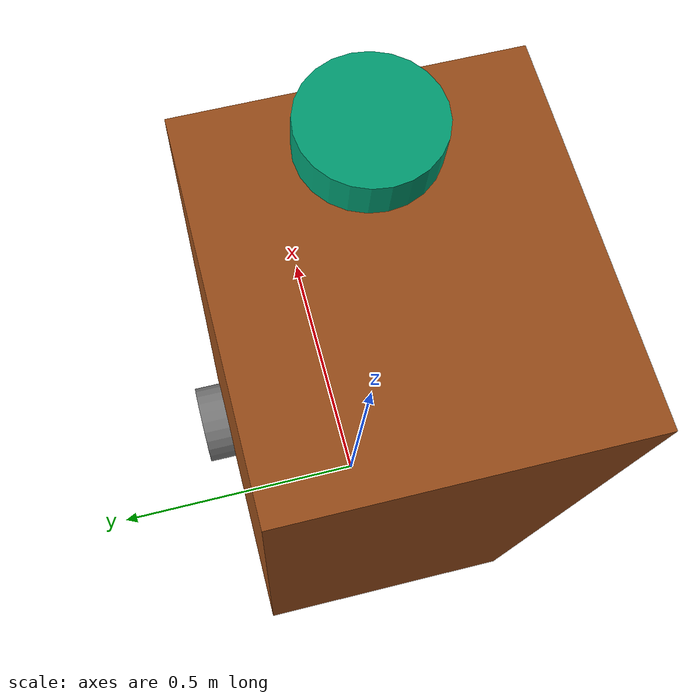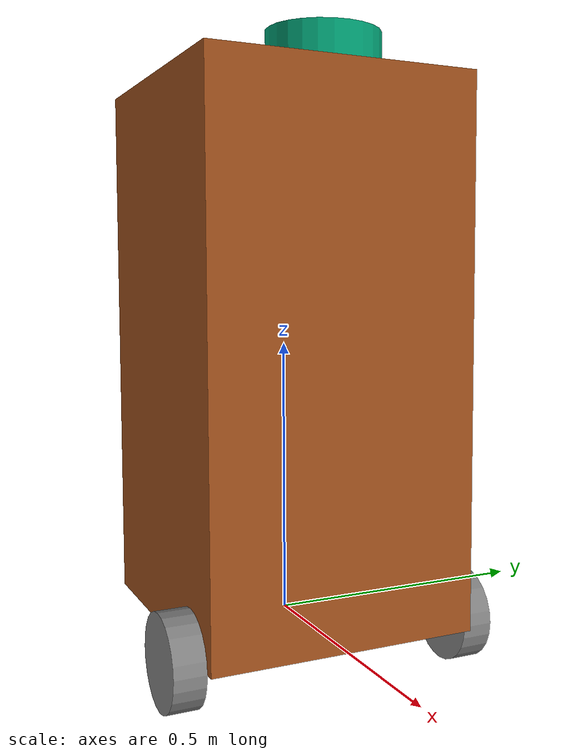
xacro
<?xml version="1.0"?>
<robot name="airobot" xmlns:xacro="http://ros.org/wiki/xacro">
    <!-- Define robot constants -->
    <xacro:property name="base_width" value="0.48"/>
    <xacro:property name="base_length" value="0.54"/>
    <xacro:property name="base_height" value="0.97"/>

    <xacro:property name="lidar_height" value="0.055"/>
    <xacro:property name="lidar_radius" value="0.097"/>

    <xacro:property name="wheel_radius" value="0.08255"/>
    <xacro:property name="wheel_width" value="0.055"/>

    <xacro:property name="caster_radius" value="0.04"/>

    <link name="base_footprint"/>

    <link name="base_link">
        <visual>
            <geometry>
                <box size="${base_length} ${base_width} ${base_height}"/>
            </geometry>
            <material name="Wooden">
                <color rgba="0.6 0.3 0.1 1.0"/>
            </material>
            <origin xyz="0.0 0.0 ${base_height/2}"/>
        </visual>
    </link>

    <link name="lidar_link">
        <visual>
            <geometry>
                <cylinder radius="${lidar_radius}" length="${lidar_height}"/>
            </geometry>
        </visual>
    </link>

    <link name="left_link">
        <visual>
            <geometry>
                <cylinder radius="${wheel_radius}" length="${wheel_width}"/>
            </geometry>
            <material name="Grey">
                <color rgba="0.5 0.5 0.5 1.0"/>
            </material>
        </visual>
    </link>

    <link name="right_link">
        <visual>
            <geometry>
                <cylinder radius="${wheel_radius}" length="${wheel_width}"/>
            </geometry>
            <material name="Grey">
                <color rgba="0.5 0.5 0.5 1.0"/>
            </material>
        </visual>
    </link>

    <link name="left_caster">
        <visual>
            <geometry>
                <sphere radius="${caster_radius}"/>
            </geometry>
            <material name="Grey">
                <color rgba="0.5 0.5 0.5 1.0"/>
            </material>
        </visual>
    </link>

    <link name="right_caster">
        <visual>
            <geometry>
                <sphere radius="${caster_radius}"/>
            </geometry>
            <material name="Grey">
                <color rgba="0.5 0.5 0.5 1.0"/>
            </material>
        </visual>
    </link>

    <!-- Joints -->
    <joint name='base_to_footprint' type="fixed">
        <parent link="base_link"/>
        <child link="base_footprint"/>
        <origin xyz="${base_length/2-0.1} 0.0 -${caster_radius*2}"/>
    </joint>

    <joint name="base_to_lidar" type="fixed">
        <parent link="base_link"/>
        <child link="lidar_link"/>
        <origin xyz="${base_length/2-lidar_radius} 0.0 ${base_height + lidar_height/2}" />
    </joint>

    <joint name="base_to_left" type="fixed">
        <parent link="base_link"/>
        <child link="left_link"/>
        <origin xyz="${base_length/2-0.1} -${base_width/2+wheel_width/2} 0.0" rpy="1.5708 0.0 0.0"/>
    </joint>

    <joint name="base_to_right" type="fixed">
        <parent link="base_link"/>
        <child link="right_link"/>
        <origin xyz="${base_length/2-0.1} ${base_width/2+wheel_width/2} 0.0" rpy="1.5708 0.0 0.0"/>
    </joint>

    <joint name="base_to_left_caster" type="fixed">
        <parent link="base_link"/>
        <child link="left_caster"/>
        <origin xyz="-${base_length/2-0.1} -${base_width/2-0.1} -${caster_radius}"/>
    </joint>

    <joint name="base_to_right_caster" type="fixed">
        <parent link="base_link"/>
        <child link="right_caster"/>
        <origin xyz="-${base_length/2-0.1} ${base_width/2-0.1} -${caster_radius}"/>
    </joint>

</robot>
